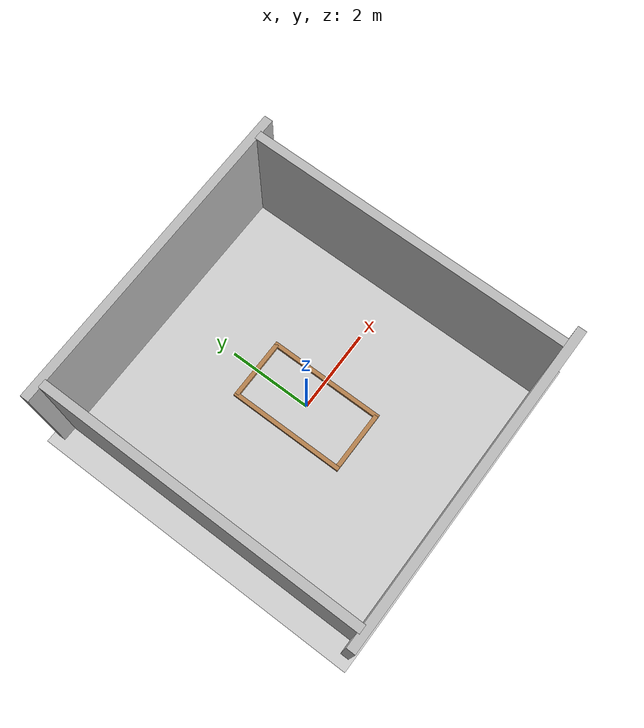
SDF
<?xml version="1.0"?>
<sdf version="1.4">
<world name="medium_track">

  <scene>
    <ambient>0.8 0.8 0.8 1.0</ambient>
    <shadows>0</shadows>
  </scene>

  <include>
    <uri>model://sun</uri>
    <pose>0.0 0.0 15.0 0 0 0</pose>
    <cast_shadows>false</cast_shadows>
    <attenuation>
      <constant>0.5</constant>
      <linear>0.01</linear>
      <quadratic>0.0</quadratic>
      <range>100</range>
    </attenuation>
  </include>
    <light name='point_light_0' type='directional'>
      <pose frame=''>0 0 1 1.57 0 0</pose>
      <diffuse>0.5 0.5 0.5 1</diffuse>
      <specular>0.02 0.02 0.02 1</specular>
      <attenuation>
        <range>20</range>
        <constant>0.5</constant>
        <linear>0.01</linear>
        <quadratic>0.001</quadratic>
      </attenuation>
      <cast_shadows>0</cast_shadows>
      <direction>0 0 -1</direction>
    </light>

    <light name='point_light_1' type='directional'>
      <pose frame=''>0 0 1 1.57 0 1.57</pose>
      <diffuse>0.5 0.5 0.5 1</diffuse>
      <specular>0.02 0.02 0.02 1</specular>
      <attenuation>
        <range>20</range>
        <constant>0.5</constant>
        <linear>0.01</linear>
        <quadratic>0.001</quadratic>
      </attenuation>
      <cast_shadows>0</cast_shadows>
      <direction>0 0 -1</direction>
    </light>

    <light name='point_light_2' type='directional'>
      <pose frame=''>0 0 1 1.57 0 3.14</pose>
      <diffuse>0.5 0.5 0.5 1</diffuse>
      <specular>0.02 0.02 0.02 1</specular>
      <attenuation>
        <range>20</range>
        <constant>0.5</constant>
        <linear>0.01</linear>
        <quadratic>0.001</quadratic>
      </attenuation>
      <cast_shadows>0</cast_shadows>
      <direction>0 0 -1</direction>
    </light>

    <light name='point_light_3' type='directional'>
      <pose frame=''>0 0 1 1.57 0 -1.57</pose>
      <diffuse>0.5 0.5 0.5 1</diffuse>
      <specular>0.02 0.02 0.02 1</specular>
      <attenuation>
        <range>20</range>
        <constant>0.5</constant>
        <linear>0.01</linear>
        <quadratic>0.001</quadratic>
      </attenuation>
      <cast_shadows>0</cast_shadows>
      <direction>0 0 -1</direction>
    </light>

  <include>
    <uri>model://sim_world/models//medium_track_plane_fall</uri>
    <pose>0 0 0 0 0 0</pose>
    <name>racetrack</name>
  </include>

    <include>
      <name>right_wall</name>
      <uri>model://sim_world/models/fall_wall1</uri>
      <static>true</static>
      <pose>3.32 0 0 0 0 0</pose>
    </include>
    <include>
      <name>left_wall</name>
      <uri>model://sim_world/models/fall_wall3</uri>
      <static>true</static>
      <pose>-3.32 0 0 0 0 0</pose>
    </include>
    <include>
      <name>upper_wall</name>
      <uri>model://sim_world/models/fall_wall4</uri>
      <static>true</static>
      <pose>0 3.805 0 0 0 1.57</pose>
    </include>
    <include>
      <name>lower_wall</name>
      <uri>model://sim_world/models/fall_wall2</uri>
      <static>true</static>
      <pose>0 -3.805 0 0 0 1.57</pose>
    </include>

    <include>
      <name>upper_wood</name>
      <uri>model://sim_world/models/wood_block_144_10_10cm</uri>
      <static>true</static>
      <pose>0 1.36 0 0 0 0</pose>
    </include>
    <include>
      <name>lower_wood</name>
      <uri>model://sim_world/models/wood_block_144_10_10cm</uri>
      <static>true</static>
      <pose>0 -1.36 0 0 0 0</pose>
    </include>
    <include>
      <name>right_wood</name>
      <uri>model://sim_world/models/wood_block_282_10_10cm</uri>
      <static>true</static>
      <pose>0.72 0 0 0 0 0</pose>
    </include>
    <include>
      <name>left_wood</name>
      <uri>model://sim_world/models/wood_block_282_10_10cm</uri>
      <static>true</static>
      <pose>-0.72 0 0 0 0 0</pose>
    </include>
</world>
</sdf>

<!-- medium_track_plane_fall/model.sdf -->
<sdf version="1.4">
<model name="medium_track">
  <static>true</static>
    <link name="link">
      <collision name="collision">
        <geometry>
          <plane>
            <normal>0 0 1</normal>
            <size>100 100</size>
          </plane>
        </geometry>
        <surface>
          <friction>
            <ode>
              <mu>100</mu>
              <mu2>50</mu2>
            </ode>
          </friction>
        </surface>
      </collision>
      <visual name="visual">
        <cast_shadows>false</cast_shadows>
        <geometry>
          <plane>
            <normal>0 0 1</normal>
            <size>8 8</size>
          </plane>
        </geometry>
        <material>
		  <script>
		    <uri>model://sim_world/meshes/medium_track_plane_fall/scripts</uri>
            <uri>model://sim_world/meshes/medium_track_plane_fall/textures</uri>
            <name>medium_track/Image</name>
		  </script>
        </material>
      </visual>
    </link>
  </model>
</sdf>

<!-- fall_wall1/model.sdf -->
<sdf version="1.5">
  <model name="fall_wall_1">
    <static>true</static>
    <link name="link">
      <pose>0 0 1.5 0 0 0</pose>
      <material>
        <ambient>0 0 0 1</ambient>
        <diffuse>0 0 0 1</diffuse>
        <specular>0 0 0 1</specular>
        <emissive>0 0 0 1</emissive>
      </material>
      <collision name="collision">
        <geometry>
          <box>
            <size>0.2 7.5 3</size>
          </box>
        </geometry>
      </collision>
      <visual name="visual">
        <cast_shadows>false</cast_shadows>
        <geometry>
          <box>
            <size>0.2 7.5 3</size>
          </box>
        </geometry>
        <material>
          <script>
            <uri>model://sim_world/models/fall_wall/materials/scripts</uri>
            <uri>model://sim_world/models/fall_wall/materials/textures</uri>
            <name>vrc/fall_wall_1</name>
          </script>
        </material>
      </visual>
    </link>
  </model>
</sdf>

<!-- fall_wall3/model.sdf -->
<sdf version="1.5">
  <model name="fall_wall_3">
    <static>true</static>
    <link name="link">
      <pose>0 0 1.5 0 0 0</pose>
      <material>
        <ambient>1 0 0 1</ambient>
        <diffuse>0 0 0 1</diffuse>
        <specular>0 0 0 1</specular>
        <emissive>0 0 0 1</emissive>
      </material>
      <collision name="collision">
        <geometry>
          <box>
            <size>0.2 7.5 3</size>
          </box>
        </geometry>
      </collision>
      <visual name="visual">
        <cast_shadows>false</cast_shadows>
        <geometry>
          <box>
            <size>0.2 7.5 3</size>
          </box>
        </geometry>
        <material>
          <script>
            <uri>model://sim_world/models/fall_wall/materials/scripts</uri>
            <uri>model://sim_world/models/fall_wall/materials/textures</uri>
            <name>vrc/fall_wall_3</name>
          </script>
        </material>
      </visual>
    </link>
  </model>
</sdf>

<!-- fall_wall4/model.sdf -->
<sdf version="1.5">
  <model name="fall_wall_4">
    <static>true</static>
    <link name="link">
      <pose>0 0 1.5 0 0 0</pose>
      <material>
        <ambient>1 0 0 1</ambient>
        <diffuse>0 0 0 1</diffuse>
        <specular>0 0 0 1</specular>
        <emissive>0 0 0 1</emissive>
      </material>
      <collision name="collision">
        <geometry>
          <box>
            <size>0.2 7.5 3</size>
          </box>
        </geometry>
      </collision>
      <visual name="visual">
        <cast_shadows>false</cast_shadows>
        <geometry>
          <box>
            <size>0.2 7.5 3</size>
          </box>
        </geometry>
        <material>
          <script>
            <uri>model://sim_world/models/fall_wall/materials/scripts</uri>
            <uri>model://sim_world/models/fall_wall/materials/textures</uri>
            <name>vrc/fall_wall_4</name>
          </script>
        </material>
      </visual>
    </link>
  </model>
</sdf>

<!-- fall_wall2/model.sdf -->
<sdf version="1.5">
  <model name="fall_wall_2">
    <static>true</static>
    <link name="link">
      <pose>0 0 1.5 0 0 0</pose>
      <material>
        <ambient>1 0 0 1</ambient>
        <diffuse>0 0 0 1</diffuse>
        <specular>0 0 0 1</specular>
        <emissive>0 0 0 1</emissive>
      </material>
      <collision name="collision">
        <geometry>
          <box>
            <size>0.2 7.5 3</size>
          </box>
        </geometry>
      </collision>
      <visual name="visual">
        <cast_shadows>false</cast_shadows>
        <geometry>
          <box>
            <size>0.2 7.5 3</size>
          </box>
        </geometry>
        <material>
          <script>
            <uri>model://sim_world/models/fall_wall/materials/scripts</uri>
            <uri>model://sim_world/models/fall_wall/materials/textures</uri>
            <name>vrc/fall_wall_2</name>
          </script>
        </material>
      </visual>
    </link>
  </model>
</sdf>

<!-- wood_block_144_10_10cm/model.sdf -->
<sdf version="1.5">
  <model name="wood_block_144_10_10cm">
    <link name="link">
      <pose>0 0 0.05 0 0 0</pose>

      <inertial>
        <mass>1000</mass>
      </inertial>

      <collision name="collision">
        <geometry>
          <box>
            <size>1.44 0.1 0.1</size>
          </box>
        </geometry>
        <surface>
          <contact>
            <!-- Red Pine coefficients for longitudinal axis of the wood
                 according to:
                 http://www.fpl.fs.fed.us/documnts/fplgtr/fplgtr113/ch04.pdf -->

            <poissons_ratio>0.347</poissons_ratio>
            <elastic_modulus>8.8e+09</elastic_modulus>
            <ode>
              <kp>100000</kp>
              <kd>1</kd>
              <max_vel>1.0</max_vel>
              <min_depth>0.001</min_depth>
            </ode>
          </contact>
          <friction>
            <torsional>
              <coefficient>1.0</coefficient>
              <use_patch_radius>0</use_patch_radius>
              <surface_radius>0.05</surface_radius>
            </torsional>
          </friction>
        </surface>
      </collision>

      <visual name="visual">
        <geometry>
          <box>
            <size>1.44 0.1 0.1</size>
          </box>
        </geometry>
        <material>
          <script>
            <uri>file://media/materials/scripts/gazebo.material</uri>
            <name>Gazebo/Wood</name>
          </script>
        </material>
      </visual>

    </link>
  </model>
</sdf>

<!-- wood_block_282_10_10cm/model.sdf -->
<sdf version="1.5">
  <model name="wood_block_282_10_10cm">
    <link name="link">
      <pose>0 0 0.05 0 0 0</pose>

      <inertial>
        <mass>1000</mass>
      </inertial>

      <collision name="collision">
        <geometry>
          <box>
            <size>0.1 2.82 0.1</size>
          </box>
        </geometry>
        <surface>
          <contact>
            <!-- Red Pine coefficients for longitudinal axis of the wood
                 according to:
                 http://www.fpl.fs.fed.us/documnts/fplgtr/fplgtr113/ch04.pdf -->

            <poissons_ratio>0.347</poissons_ratio>
            <elastic_modulus>8.8e+09</elastic_modulus>
            <ode>
              <kp>100000</kp>
              <kd>1</kd>
              <max_vel>1.0</max_vel>
              <min_depth>0.001</min_depth>
            </ode>
          </contact>
          <friction>
            <torsional>
              <coefficient>1.0</coefficient>
              <use_patch_radius>0</use_patch_radius>
              <surface_radius>0.05</surface_radius>
            </torsional>
          </friction>
        </surface>
      </collision>

      <visual name="visual">
        <geometry>
          <box>
            <size>0.1 2.82 0.1</size>
          </box>
        </geometry>
        <material>
          <script>
            <uri>file://media/materials/scripts/gazebo.material</uri>
            <name>Gazebo/Wood</name>
          </script>
        </material>
      </visual>

    </link>
  </model>
</sdf>
